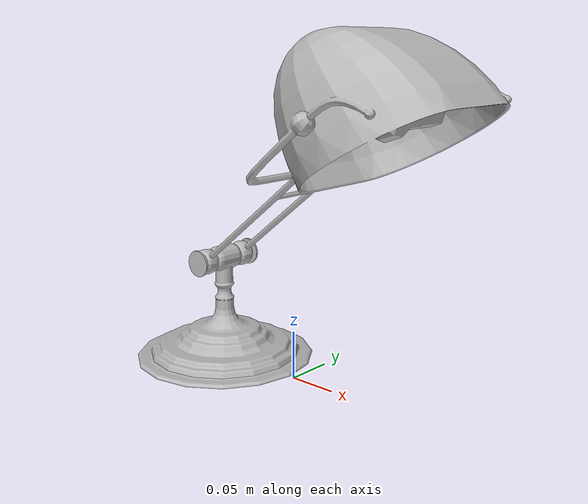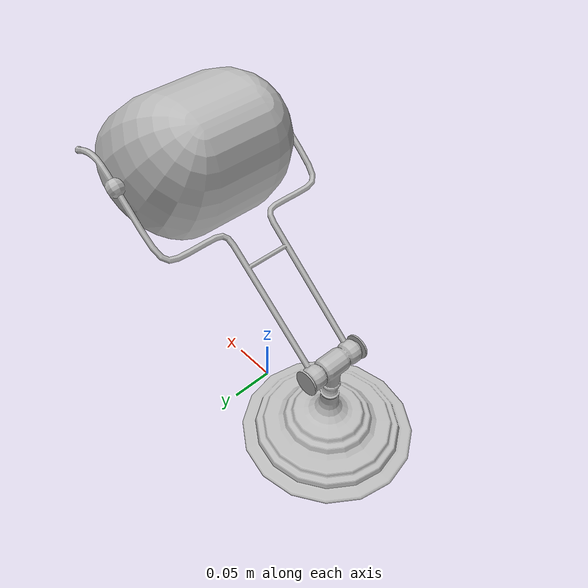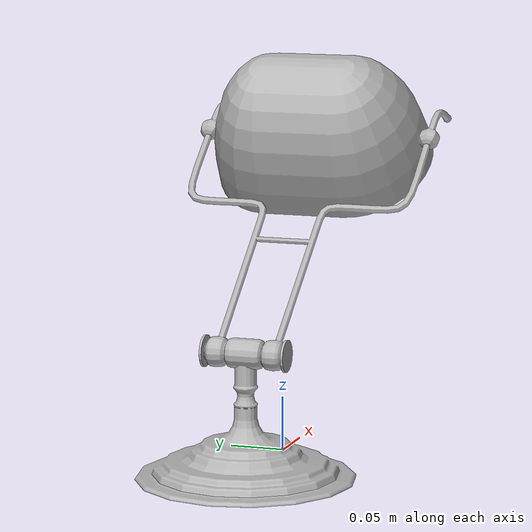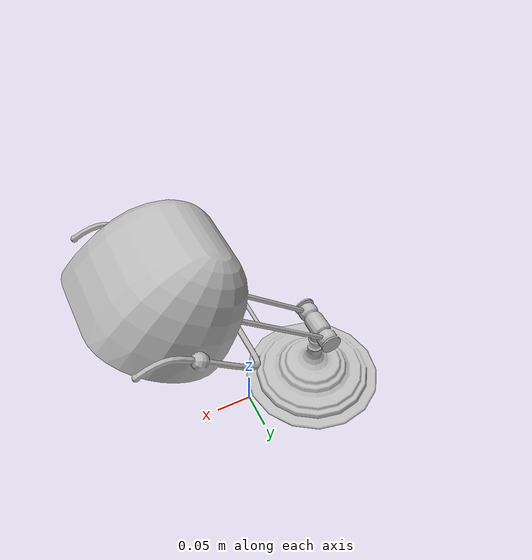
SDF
<?xml version='1.0'?>
<sdf version='1.4'>
  <model name='423'>
    <pose>0 0 0 0 0 0</pose>
    <static>true</static>
    <link name='link'>
      <collision name='collision'>
        <pose>0 0 0 0 0 0</pose>
        <geometry>
          <box>
            <size>0.401762 0.233378 2</size>
          </box>
        </geometry>
      </collision>
      <visual name='visual'>
        <pose>0 0 0 0 0 0</pose>
        <geometry>
          <mesh><uri>model://423/423.dae</uri></mesh>
        </geometry>
      </visual>
    </link>
  </model>
</sdf>
